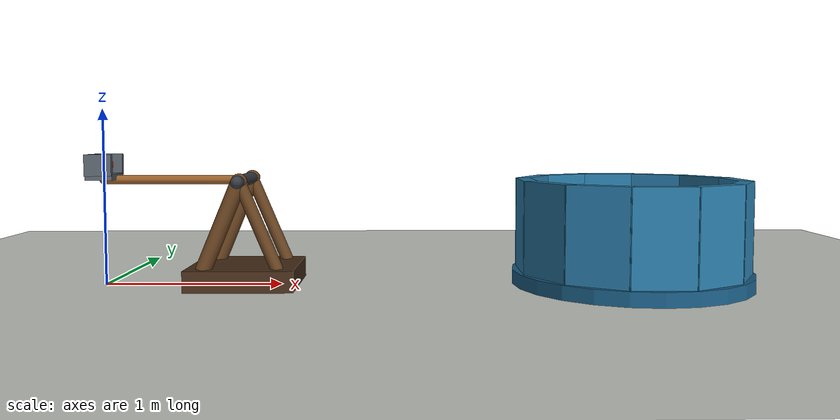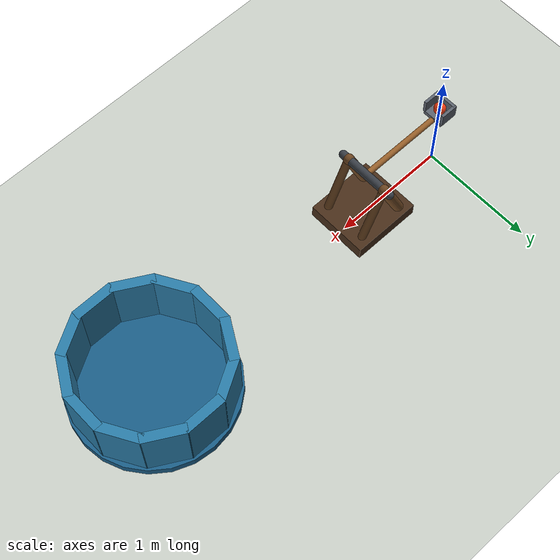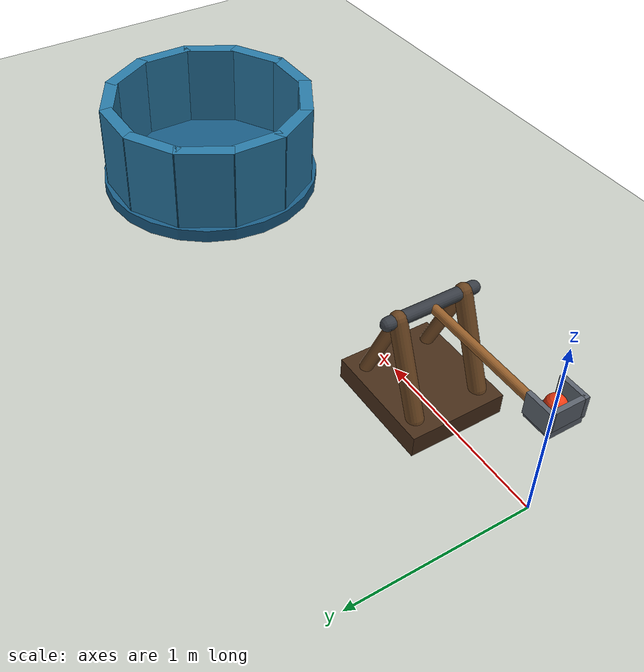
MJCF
<mujoco model="spring_catapult_into_bucket">
  <compiler angle="degree" autolimits="true" inertiafromgeom="true"/>
  <option timestep="0.002" gravity="0 0 -9.81" integrator="implicitfast" solver="Newton" iterations="100" cone="elliptic"/>
  <size njmax="1000" nconmax="200"/>

  <visual>
    <headlight ambient="0.35 0.35 0.35" diffuse="0.65 0.65 0.65" specular="0.15 0.15 0.15"/>
    <rgba haze="0.85 0.90 0.95 1"/>
  </visual>

  <worldbody>
    <light name="key_light" pos="0 -3 6" dir="0.2 0.4 -1" diffuse="0.85 0.85 0.85"/>
    <light name="fill_light" pos="4 3 5" dir="-0.3 -0.3 -1" diffuse="0.45 0.45 0.45"/>
    <camera name="overview" pos="1.5 -6 3.5" xyaxes="1 0 0 0 0.447214 0.894427" fovy="45"/>

    <geom name="floor" type="plane" pos="0 0 0" size="6 5 0.1" rgba="0.78 0.80 0.77 1" friction="0.7 0.005 0.0001"/>

    <!-- The launch cup initially holds the stationary ball at x=0. -->
    <body name="catapult_base" pos="0.8 0 0">
      <geom name="catapult_base_plate" type="box" pos="0 0 0.06" size="0.30 0.27 0.06" rgba="0.28 0.18 0.10 1"/>
      <geom name="catapult_support_left" type="capsule" fromto="-0.20 -0.19 0.12 0 -0.19 0.60" size="0.045" rgba="0.42 0.27 0.13 1"/>
      <geom name="catapult_support_right" type="capsule" fromto="-0.20 0.19 0.12 0 0.19 0.60" size="0.045" rgba="0.42 0.27 0.13 1"/>
      <geom name="catapult_brace_left" type="capsule" fromto="0.20 -0.19 0.12 0 -0.19 0.60" size="0.035" rgba="0.42 0.27 0.13 1"/>
      <geom name="catapult_brace_right" type="capsule" fromto="0.20 0.19 0.12 0 0.19 0.60" size="0.035" rgba="0.42 0.27 0.13 1"/>
      <geom name="catapult_axle" type="capsule" fromto="0 -0.25 0.60 0 0.25 0.60" size="0.035" rgba="0.22 0.24 0.27 1"/>

      <!-- A preloaded torsion spring drives the arm into its 45-degree stop. -->
      <body name="catapult_arm" pos="0 0 0.60">
        <joint name="catapult_hinge" type="hinge" axis="0 1 0" range="0 45" stiffness="5.4" springref="90" damping="0.025" solreflimit="0.004 1" solimplimit="0.99 0.999 0.0001"/>
        <geom name="catapult_throwing_arm" type="capsule" fromto="0 0 0 -0.8 0 0" size="0.025" mass="0.20" rgba="0.60 0.38 0.17 1" friction="0.12 0.001 0.0001"/>
        <geom name="catapult_cup_floor" type="box" pos="-0.8 0 0.0175" size="0.075 0.09 0.0175" mass="0.10" rgba="0.36 0.39 0.43 1" friction="0.12 0.001 0.0001" solref="0.006 1" solimp="0.95 0.99 0.001"/>
        <geom name="catapult_cup_back" type="box" pos="-0.862 0 0.085" size="0.012 0.09 0.06" mass="0.02" rgba="0.36 0.39 0.43 1" friction="0.12 0.001 0.0001" solref="0.006 1" solimp="0.95 0.99 0.001"/>
        <geom name="catapult_cup_left" type="box" pos="-0.8 -0.09 0.085" size="0.075 0.012 0.06" mass="0.02" rgba="0.36 0.39 0.43 1" friction="0.12 0.001 0.0001" solref="0.006 1" solimp="0.95 0.99 0.001"/>
        <geom name="catapult_cup_right" type="box" pos="-0.8 0.09 0.085" size="0.075 0.012 0.06" mass="0.02" rgba="0.36 0.39 0.43 1" friction="0.12 0.001 0.0001" solref="0.006 1" solimp="0.95 0.99 0.001"/>
      </body>
    </body>

    <body name="ball" pos="0 0 0.685">
      <freejoint/>
      <geom name="ball" type="sphere" size="0.05" mass="0.08" rgba="0.95 0.24 0.08 1" friction="0.12 0.001 0.0001" solref="0.006 1" solimp="0.95 0.99 0.001"/>
    </body>

    <!-- Open-topped bucket, centered 3 m from the initial ball position. -->
    <body name="bucket" pos="3 0 0">
      <geom name="bucket_bottom" type="cylinder" pos="0 0 0.04" size="0.68 0.04" rgba="0.10 0.36 0.52 1" friction="0.65 0.005 0.0001" solref="0.008 1"/>
      <geom name="bucket_wall_00" type="box" pos="0.6 0 0.32" size="0.04 0.175 0.28" euler="0 0 0" rgba="0.16 0.48 0.65 1" friction="0.65 0.005 0.0001" solref="0.008 1"/>
      <geom name="bucket_wall_01" type="box" pos="0.519615 0.3 0.32" size="0.04 0.175 0.28" euler="0 0 30" rgba="0.16 0.48 0.65 1" friction="0.65 0.005 0.0001" solref="0.008 1"/>
      <geom name="bucket_wall_02" type="box" pos="0.3 0.519615 0.32" size="0.04 0.175 0.28" euler="0 0 60" rgba="0.16 0.48 0.65 1" friction="0.65 0.005 0.0001" solref="0.008 1"/>
      <geom name="bucket_wall_03" type="box" pos="0 0.6 0.32" size="0.04 0.175 0.28" euler="0 0 90" rgba="0.16 0.48 0.65 1" friction="0.65 0.005 0.0001" solref="0.008 1"/>
      <geom name="bucket_wall_04" type="box" pos="-0.3 0.519615 0.32" size="0.04 0.175 0.28" euler="0 0 120" rgba="0.16 0.48 0.65 1" friction="0.65 0.005 0.0001" solref="0.008 1"/>
      <geom name="bucket_wall_05" type="box" pos="-0.519615 0.3 0.32" size="0.04 0.175 0.28" euler="0 0 150" rgba="0.16 0.48 0.65 1" friction="0.65 0.005 0.0001" solref="0.008 1"/>
      <geom name="bucket_wall_06" type="box" pos="-0.6 0 0.32" size="0.04 0.175 0.28" euler="0 0 180" rgba="0.16 0.48 0.65 1" friction="0.65 0.005 0.0001" solref="0.008 1"/>
      <geom name="bucket_wall_07" type="box" pos="-0.519615 -0.3 0.32" size="0.04 0.175 0.28" euler="0 0 210" rgba="0.16 0.48 0.65 1" friction="0.65 0.005 0.0001" solref="0.008 1"/>
      <geom name="bucket_wall_08" type="box" pos="-0.3 -0.519615 0.32" size="0.04 0.175 0.28" euler="0 0 240" rgba="0.16 0.48 0.65 1" friction="0.65 0.005 0.0001" solref="0.008 1"/>
      <geom name="bucket_wall_09" type="box" pos="0 -0.6 0.32" size="0.04 0.175 0.28" euler="0 0 270" rgba="0.16 0.48 0.65 1" friction="0.65 0.005 0.0001" solref="0.008 1"/>
      <geom name="bucket_wall_10" type="box" pos="0.3 -0.519615 0.32" size="0.04 0.175 0.28" euler="0 0 300" rgba="0.16 0.48 0.65 1" friction="0.65 0.005 0.0001" solref="0.008 1"/>
      <geom name="bucket_wall_11" type="box" pos="0.519615 -0.3 0.32" size="0.04 0.175 0.28" euler="0 0 330" rgba="0.16 0.48 0.65 1" friction="0.65 0.005 0.0001" solref="0.008 1"/>
    </body>
  </worldbody>

  <keyframe>
    <key name="start" qpos="0 0 0 0.685 1 0 0 0" qvel="0 0 0 0 0 0 0"/>
  </keyframe>
</mujoco>
